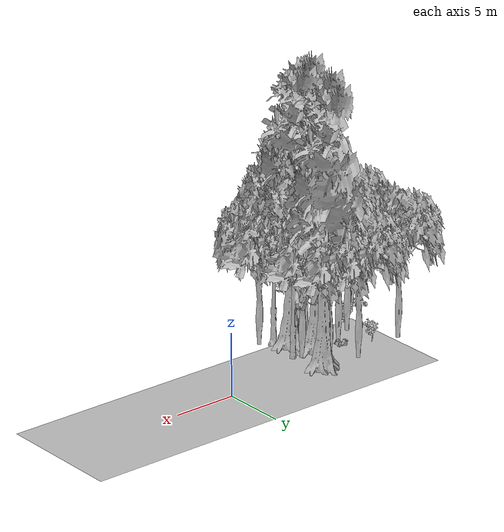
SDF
<sdf version="1.7">
 <world name="default">
  <model name="ground_plane">
   <static>1</static>
   <link name="link">
    <collision name="collision">
     <geometry><plane><normal>0 0 1</normal><size>100 100</size></plane></geometry>
     <surface><contact><ode><min_depth>0.01</min_depth><max_vel>0</max_vel></ode></contact></surface>
    </collision>
    <visual name="grass">
     <cast_shadows>0</cast_shadows>
     <geometry>
      <mesh>
       <scale>0.5814285714285714 0.18142857142857144 0.1</scale>
       <uri>file://grass_plane/meshes/grass_plane.dae</uri>
      </mesh>
     </geometry>
    </visual>
   </link>
  </model>
  <model name="Tree 37">
   <static>1</static>
   <pose>-8.744928585873147 -3.7799355606415475 0 1.57079 -0 0</pose>
   <link name="link">
    <collision name="collision">
     <geometry><mesh><scale>3.5 5 3.5</scale><uri>model://tree_4/meshes/tree_4.obj</uri></mesh></geometry>
    </collision>
    <visual name="visual">
     <geometry><mesh><scale>3.5 5 3.5</scale><uri>model://tree_4/meshes/tree_4.obj</uri></mesh></geometry>
    </visual>
   </link>
  </model>
  <model name="Tree 55">
   <static>1</static>
   <pose>-9.071832926761367 -2.3822365051680805 0 1.57079 -0 0</pose>
   <link name="link">
    <collision name="collision">
     <geometry><mesh><scale>3.5 5 3.5</scale><uri>model://tree_9/meshes/tree_9.obj</uri></mesh></geometry>
    </collision>
    <visual name="visual">
     <geometry><mesh><scale>3.5 5 3.5</scale><uri>model://tree_9/meshes/tree_9.obj</uri></mesh></geometry>
    </visual>
   </link>
  </model>
  <model name="Tree 64">
   <static>1</static>
   <pose>-10.783278401159848 -2.72829942089173 0 1.57079 -0 0</pose>
   <link name="link">
    <collision name="collision">
     <geometry><mesh><scale>3.5 5 3.5</scale><uri>model://tree_2/meshes/tree_2.obj</uri></mesh></geometry>
    </collision>
    <visual name="visual">
     <geometry><mesh><scale>3.5 5 3.5</scale><uri>model://tree_2/meshes/tree_2.obj</uri></mesh></geometry>
    </visual>
   </link>
  </model>
  <model name="Tree 69">
   <static>1</static>
   <pose>-8.415344369734918 -1.9827578946694917 0 1.57079 -0 0</pose>
   <link name="link">
    <collision name="collision">
     <geometry><mesh><scale>3.5 5 3.5</scale><uri>model://tree_2/meshes/tree_2.obj</uri></mesh></geometry>
    </collision>
    <visual name="visual">
     <geometry><mesh><scale>3.5 5 3.5</scale><uri>model://tree_2/meshes/tree_2.obj</uri></mesh></geometry>
    </visual>
   </link>
  </model>
  <model name="Tree 109">
   <static>1</static>
   <pose>-16.281446063805227 -0.16245194614615954 0 1.57079 -0 0</pose>
   <link name="link">
    <collision name="collision">
     <geometry><mesh><scale>3.5 5 3.5</scale><uri>model://tree_2/meshes/tree_2.obj</uri></mesh></geometry>
    </collision>
    <visual name="visual">
     <geometry><mesh><scale>3.5 5 3.5</scale><uri>model://tree_2/meshes/tree_2.obj</uri></mesh></geometry>
    </visual>
   </link>
  </model>
  <model name="Tree 111">
   <static>1</static>
   <pose>-8.078507469363068 0.7839302226173608 0 1.57079 -0 0</pose>
   <link name="link">
    <collision name="collision">
     <geometry><mesh><scale>3.5 5 3.5</scale><uri>model://tree_4/meshes/tree_4.obj</uri></mesh></geometry>
    </collision>
    <visual name="visual">
     <geometry><mesh><scale>3.5 5 3.5</scale><uri>model://tree_4/meshes/tree_4.obj</uri></mesh></geometry>
    </visual>
   </link>
  </model>
  <model name="Tree 137">
   <static>1</static>
   <pose>-7.732247695387699 -2.298754698774504 0 1.57079 -0 0</pose>
   <link name="link">
    <collision name="collision">
     <geometry><mesh><scale>3.5 5 3.5</scale><uri>model://tree_9/meshes/tree_9.obj</uri></mesh></geometry>
    </collision>
    <visual name="visual">
     <geometry><mesh><scale>3.5 5 3.5</scale><uri>model://tree_9/meshes/tree_9.obj</uri></mesh></geometry>
    </visual>
   </link>
  </model>
  <model name="Tree 177">
   <static>1</static>
   <pose>-9.687547582634096 -1.9314073454562397 0 1.57079 -0 0</pose>
   <link name="link">
    <collision name="collision">
     <geometry><mesh><scale>3.5 5 3.5</scale><uri>model://tree_4/meshes/tree_4.obj</uri></mesh></geometry>
    </collision>
    <visual name="visual">
     <geometry><mesh><scale>3.5 5 3.5</scale><uri>model://tree_4/meshes/tree_4.obj</uri></mesh></geometry>
    </visual>
   </link>
  </model>
  <model name="Tree 181">
   <static>1</static>
   <pose>-8.700124086655663 -5.697123041376695 0 1.57079 -0 0</pose>
   <link name="link">
    <collision name="collision">
     <geometry><mesh><scale>3.5 5 3.5</scale><uri>model://tree_9/meshes/tree_9.obj</uri></mesh></geometry>
    </collision>
    <visual name="visual">
     <geometry><mesh><scale>3.5 5 3.5</scale><uri>model://tree_9/meshes/tree_9.obj</uri></mesh></geometry>
    </visual>
   </link>
  </model>
  <model name="Tree 216">
   <static>1</static>
   <pose>-14.203631768729302 -3.595789548504303 0 1.57079 -0 0</pose>
   <link name="link">
    <collision name="collision">
     <geometry><mesh><scale>3.5 5 3.5</scale><uri>model://tree_2/meshes/tree_2.obj</uri></mesh></geometry>
    </collision>
    <visual name="visual">
     <geometry><mesh><scale>3.5 5 3.5</scale><uri>model://tree_2/meshes/tree_2.obj</uri></mesh></geometry>
    </visual>
   </link>
  </model>
  <model name="Tree 248">
   <static>1</static>
   <pose>-7.490173462033006 -5.822335802641 0 1.57079 -0 0</pose>
   <link name="link">
    <collision name="collision">
     <geometry><mesh><scale>3.5 5 3.5</scale><uri>model://tree_2/meshes/tree_2.obj</uri></mesh></geometry>
    </collision>
    <visual name="visual">
     <geometry><mesh><scale>3.5 5 3.5</scale><uri>model://tree_2/meshes/tree_2.obj</uri></mesh></geometry>
    </visual>
   </link>
  </model>
  <model name="Tree 294">
   <static>1</static>
   <pose>-11.658160811846486 0.6345999534075801 0 1.57079 -0 0</pose>
   <link name="link">
    <collision name="collision">
     <geometry><mesh><scale>3.5 5 3.5</scale><uri>model://tree_2/meshes/tree_2.obj</uri></mesh></geometry>
    </collision>
    <visual name="visual">
     <geometry><mesh><scale>3.5 5 3.5</scale><uri>model://tree_2/meshes/tree_2.obj</uri></mesh></geometry>
    </visual>
   </link>
  </model>
  <model name="Tree 324">
   <static>1</static>
   <pose>-16.721602309283398 -6.069581483295664 0 1.57079 -0 0</pose>
   <link name="link">
    <collision name="collision">
     <geometry><mesh><scale>3.5 5 3.5</scale><uri>model://tree_2/meshes/tree_2.obj</uri></mesh></geometry>
    </collision>
    <visual name="visual">
     <geometry><mesh><scale>3.5 5 3.5</scale><uri>model://tree_2/meshes/tree_2.obj</uri></mesh></geometry>
    </visual>
   </link>
  </model>
  <model name="Tree 355">
   <static>1</static>
   <pose>-10.73425562012946 -5.382125946089571 0 1.57079 -0 0</pose>
   <link name="link">
    <collision name="collision">
     <geometry><mesh><scale>3.5 5 3.5</scale><uri>model://tree_4/meshes/tree_4.obj</uri></mesh></geometry>
    </collision>
    <visual name="visual">
     <geometry><mesh><scale>3.5 5 3.5</scale><uri>model://tree_4/meshes/tree_4.obj</uri></mesh></geometry>
    </visual>
   </link>
  </model>
  <model name="Tree 370">
   <static>1</static>
   <pose>-9.209272563295855 -3.4089195331762294 0 1.57079 -0 0</pose>
   <link name="link">
    <collision name="collision">
     <geometry><mesh><scale>3.5 5 3.5</scale><uri>model://tree_2/meshes/tree_2.obj</uri></mesh></geometry>
    </collision>
    <visual name="visual">
     <geometry><mesh><scale>3.5 5 3.5</scale><uri>model://tree_2/meshes/tree_2.obj</uri></mesh></geometry>
    </visual>
   </link>
  </model>
  <model name="Tree 379">
   <static>1</static>
   <pose>-12.437046339549042 -2.543937110088585 0 1.57079 -0 0</pose>
   <link name="link">
    <collision name="collision">
     <geometry><mesh><scale>3.5 5 3.5</scale><uri>model://tree_2/meshes/tree_2.obj</uri></mesh></geometry>
    </collision>
    <visual name="visual">
     <geometry><mesh><scale>3.5 5 3.5</scale><uri>model://tree_2/meshes/tree_2.obj</uri></mesh></geometry>
    </visual>
   </link>
  </model>
  <model name="Tree 392">
   <static>1</static>
   <pose>-9.37441451666281 -0.029628735552995167 0 1.57079 -0 0</pose>
   <link name="link">
    <collision name="collision">
     <geometry><mesh><scale>3.5 5 3.5</scale><uri>model://tree_2/meshes/tree_2.obj</uri></mesh></geometry>
    </collision>
    <visual name="visual">
     <geometry><mesh><scale>3.5 5 3.5</scale><uri>model://tree_2/meshes/tree_2.obj</uri></mesh></geometry>
    </visual>
   </link>
  </model>
  <model name="Bush 77">
   <static>1</static>
   <pose>-11.806607943509803 -4.332716811592048 0 1.57079 -0 0</pose>
   <link name="link">
    <collision name="collision">
     <geometry><mesh><scale>2 2 2</scale><uri>model://bush_2/meshes/bush_2.obj</uri></mesh></geometry>
     <surface><contact><collide_without_contact>false</collide_without_contact></contact></surface>
    </collision>
    <visual name="visual">
     <geometry><mesh><scale>2 2 2</scale><uri>model://bush_2/meshes/bush_2.obj</uri></mesh></geometry>
    </visual>
   </link>
  </model>
  <model name="Bush 131">
   <static>1</static>
   <pose>-14.86999343513277 -4.786797536635532 0 1.57079 -0 0</pose>
   <link name="link">
    <collision name="collision">
     <geometry><mesh><scale>2 2 2</scale><uri>model://bush_0/meshes/bush_0.obj</uri></mesh></geometry>
     <surface><contact><collide_without_contact>false</collide_without_contact></contact></surface>
    </collision>
    <visual name="visual">
     <geometry><mesh><scale>2 2 2</scale><uri>model://bush_0/meshes/bush_0.obj</uri></mesh></geometry>
    </visual>
   </link>
  </model>
  <model name="Bush 144">
   <static>1</static>
   <pose>-14.145453776940762 -0.7654248834178983 0 1.57079 -0 0</pose>
   <link name="link">
    <collision name="collision">
     <geometry><mesh><scale>2 2 2</scale><uri>model://bush_5/meshes/bush_5.obj</uri></mesh></geometry>
     <surface><contact><collide_without_contact>false</collide_without_contact></contact></surface>
    </collision>
    <visual name="visual">
     <geometry><mesh><scale>2 2 2</scale><uri>model://bush_5/meshes/bush_5.obj</uri></mesh></geometry>
    </visual>
   </link>
  </model>
  <model name="Bush 233">
   <static>1</static>
   <pose>-12.067696712283762 -1.8813759751298278 0 1.57079 -0 0</pose>
   <link name="link">
    <collision name="collision">
     <geometry><mesh><scale>2 2 2</scale><uri>model://bush_2/meshes/bush_2.obj</uri></mesh></geometry>
     <surface><contact><collide_without_contact>false</collide_without_contact></contact></surface>
    </collision>
    <visual name="visual">
     <geometry><mesh><scale>2 2 2</scale><uri>model://bush_2/meshes/bush_2.obj</uri></mesh></geometry>
    </visual>
   </link>
  </model>
  <model name="Bush 294">
   <static>1</static>
   <pose>-17.239115621142833 -5.971491462372068 0 1.57079 -0 0</pose>
   <link name="link">
    <collision name="collision">
     <geometry><mesh><scale>2 2 2</scale><uri>model://bush_3/meshes/bush_3.obj</uri></mesh></geometry>
     <surface><contact><collide_without_contact>false</collide_without_contact></contact></surface>
    </collision>
    <visual name="visual">
     <geometry><mesh><scale>2 2 2</scale><uri>model://bush_3/meshes/bush_3.obj</uri></mesh></geometry>
    </visual>
   </link>
  </model>
  <model name="Bush 326">
   <static>1</static>
   <pose>-8.4586216126796 -4.320332721467569 0 1.57079 -0 0</pose>
   <link name="link">
    <collision name="collision">
     <geometry><mesh><scale>2 2 2</scale><uri>model://bush_2/meshes/bush_2.obj</uri></mesh></geometry>
     <surface><contact><collide_without_contact>false</collide_without_contact></contact></surface>
    </collision>
    <visual name="visual">
     <geometry><mesh><scale>2 2 2</scale><uri>model://bush_2/meshes/bush_2.obj</uri></mesh></geometry>
    </visual>
   </link>
  </model>
 </world>
</sdf>
